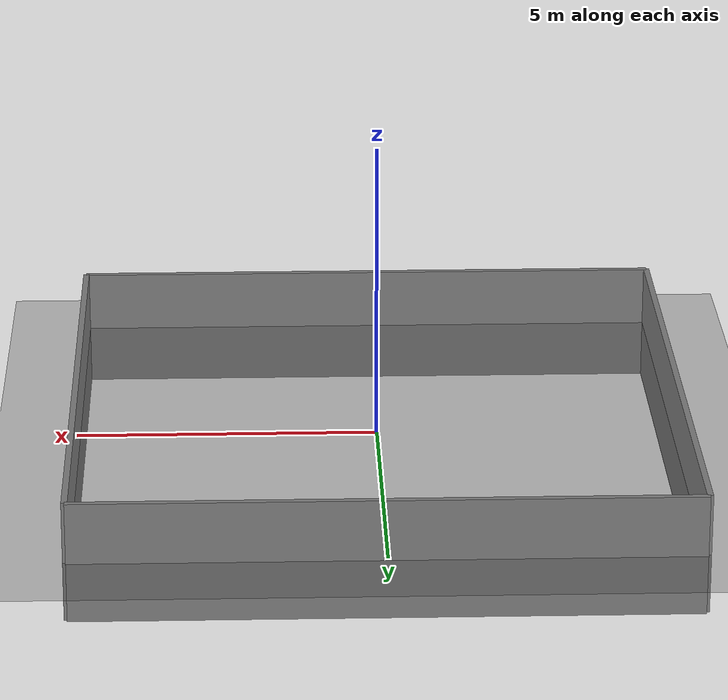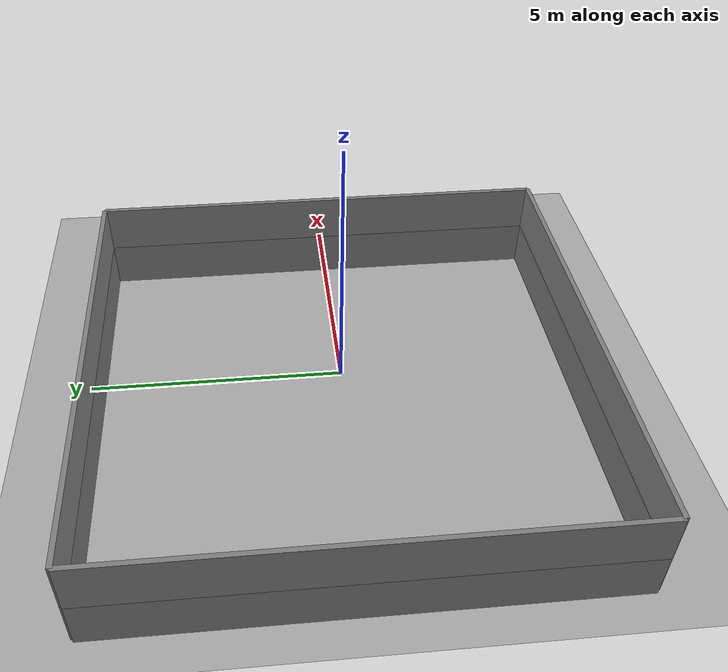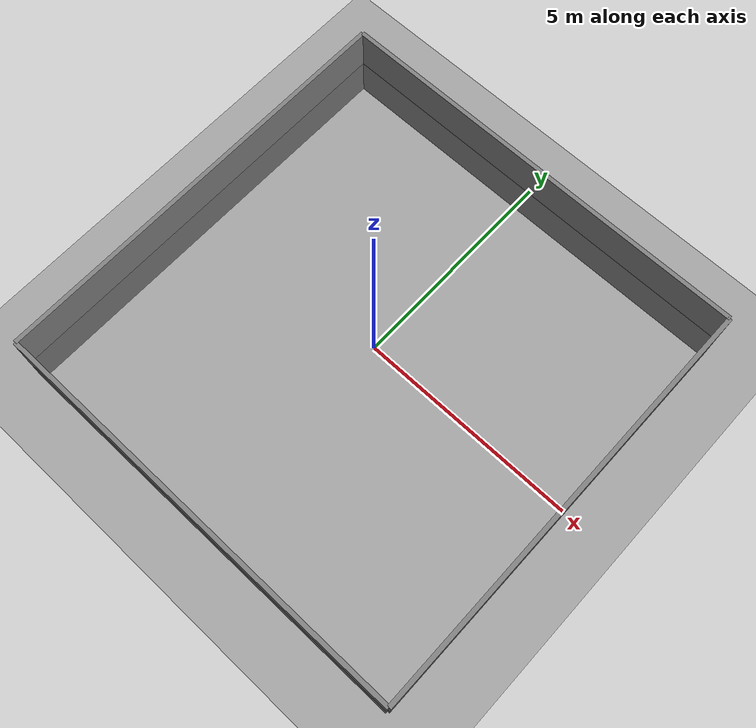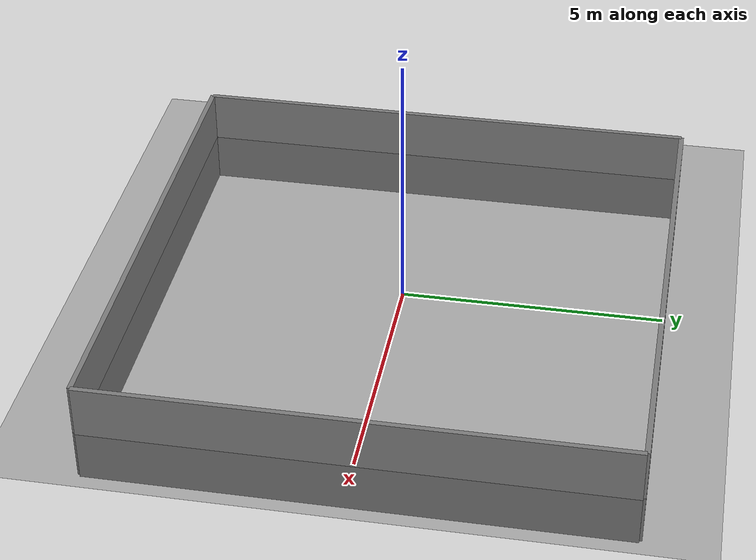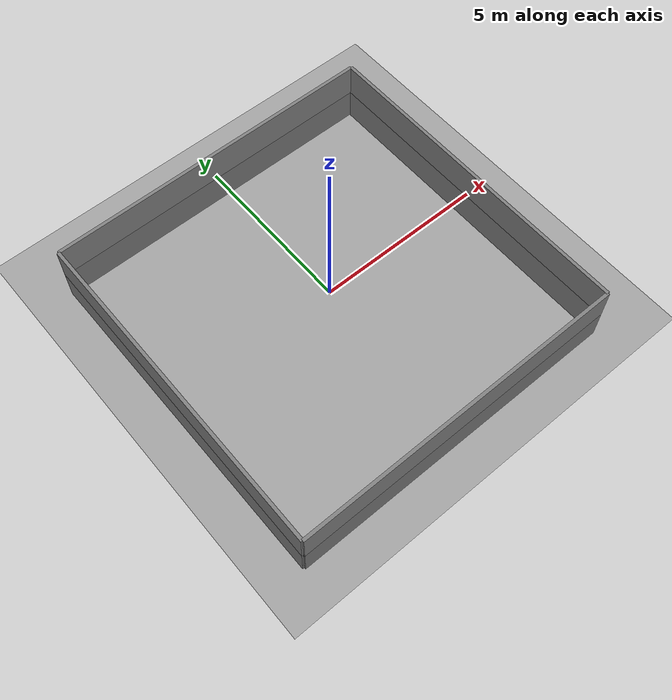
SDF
<?xml version="1.0" ?>
<sdf version="1.6">
  <world name="warehouse">
    <!-- Physics Engine -->
    <physics name="default_physics" default="0" type="ode">
      <max_step_size>0.001</max_step_size>
      <real_time_factor>1.0</real_time_factor>
    </physics>

    <!-- Scene Properties -->
    <scene>
      <ambient>0.4 0.4 0.4 1</ambient>
      <background>0.7 0.7 0.7 1</background>
      <shadows>1</shadows>
    </scene>

    <!-- Sun/Light -->
    <light name="sun" type="directional">
      <cast_shadows>1</cast_shadows>
      <pose>0 0 10 0 0 0</pose>
      <diffuse>0.8 0.8 0.8 1</diffuse>
      <specular>0.2 0.2 0.2 1</specular>
      <attenuation>
        <range>1000</range>
        <constant>0.9</constant>
        <linear>0.01</linear>
        <quadratic>0.001</quadratic>
      </attenuation>
      <direction>-0.5 0.1 -0.9</direction>
    </light>

    <!-- Ground Plane -->
    <model name="ground_plane">
      <static>true</static>
      <link name="link">
        <collision name="collision">
          <geometry>
            <plane>
              <normal>0 0 1</normal>
              <size>100 100</size>
            </plane>
          </geometry>
        </collision>
        <visual name="visual">
          <geometry>
            <plane>
              <normal>0 0 1</normal>
              <size>100 100</size>
            </plane>
          </geometry>
          <material>
            <ambient>0.3 0.3 0.3 1</ambient>
            <diffuse>0.3 0.3 0.3 1</diffuse>
            <specular>0.3 0.3 0.3 1</specular>
          </material>
        </visual>
      </link>
    </model>

    <!-- Wall 1 (North) -->
    <model name="wall_north">
      <static>true</static>
      <pose>0 5 0 0 0 0</pose>
      <link name="link">
        <collision name="collision">
          <geometry>
            <box>
              <size>10 0.1 2</size>
            </box>
          </geometry>
        </collision>
        <visual name="visual">
          <geometry>
            <box>
              <size>10 0.1 2</size>
            </box>
          </geometry>
          <material>
            <ambient>0.5 0.5 0.5 1</ambient>
            <diffuse>0.5 0.5 0.5 1</diffuse>
          </material>
        </visual>
      </link>
    </model>

    <!-- Wall 2 (South) -->
    <model name="wall_south">
      <static>true</static>
      <pose>0 -5 0 0 0 0</pose>
      <link name="link">
        <collision name="collision">
          <geometry>
            <box>
              <size>10 0.1 2</size>
            </box>
          </geometry>
        </collision>
        <visual name="visual">
          <geometry>
            <box>
              <size>10 0.1 2</size>
            </box>
          </geometry>
          <material>
            <ambient>0.5 0.5 0.5 1</ambient>
            <diffuse>0.5 0.5 0.5 1</diffuse>
          </material>
        </visual>
      </link>
    </model>

    <!-- Wall 3 (East) -->
    <model name="wall_east">
      <static>true</static>
      <pose>5 0 0 0 0 0</pose>
      <link name="link">
        <collision name="collision">
          <geometry>
            <box>
              <size>0.1 10 2</size>
            </box>
          </geometry>
        </collision>
        <visual name="visual">
          <geometry>
            <box>
              <size>0.1 10 2</size>
            </box>
          </geometry>
          <material>
            <ambient>0.5 0.5 0.5 1</ambient>
            <diffuse>0.5 0.5 0.5 1</diffuse>
          </material>
        </visual>
      </link>
    </model>

    <!-- Wall 4 (West) -->
    <model name="wall_west">
      <static>true</static>
      <pose>-5 0 0 0 0 0</pose>
      <link name="link">
        <collision name="collision">
          <geometry>
            <box>
              <size>0.1 10 2</size>
            </box>
          </geometry>
        </collision>
        <visual name="visual">
          <geometry>
            <box>
              <size>0.1 10 2</size>
            </box>
          </geometry>
          <material>
            <ambient>0.5 0.5 0.5 1</ambient>
            <diffuse>0.5 0.5 0.5 1</diffuse>
          </material>
        </visual>
      </link>
    </model>

  </world>
</sdf>
